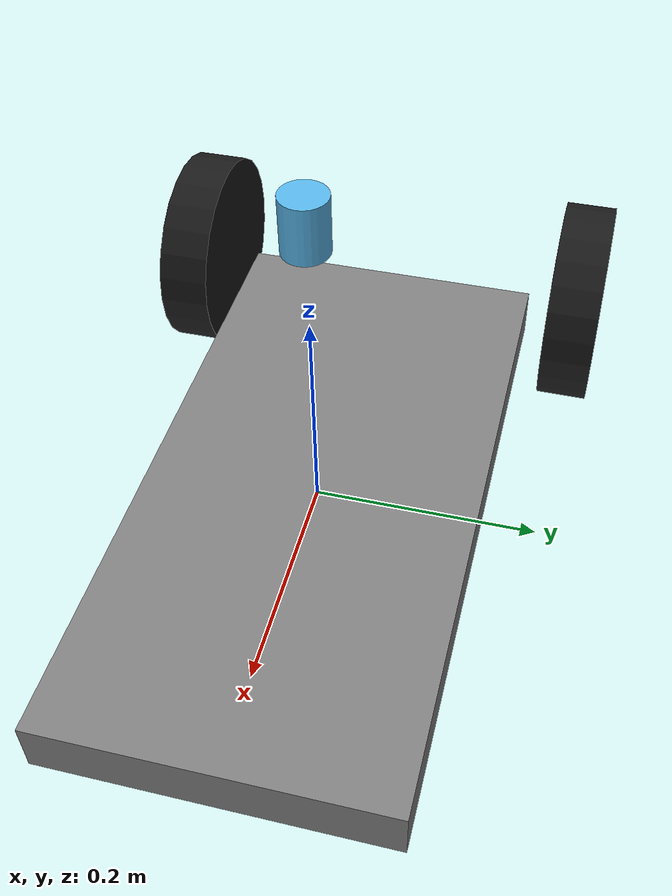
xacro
<?xml version="1.0"?>
<robot name="my_bot">
  <!-- Base link -->
  <link name="base_link">
    <visual>
      <geometry>
        <box size="0.6 0.3 0.05"/>
      </geometry>
      <material name="gray">
        <color rgba="0.5 0.5 0.5 1.0"/>
      </material>
    </visual>
    <collision>
      <geometry>
        <box size="1.0 0.3 0.05"/>
      </geometry>
    </collision>
    <inertial>
      <mass value="5.0"/>
      <inertia ixx="0.1" ixy="0.0" ixz="0.0"
               iyy="0.1" iyz="0.0"
               izz="0.1"/>
    </inertial>
  </link>

  <!-- Link for the laser -->
  <link name="laser_link">
    <inertial>
      <mass value="0.1"/>
      <origin xyz="0 0 0" rpy="0 0 0"/>
      <inertia ixx="0.01" ixy="0" ixz="0" iyy="0.01" iyz="0" izz="0.01"/>
    </inertial>
    <visual>
      <geometry>
        <cylinder length="0.05" radius="0.02"/>
      </geometry>
    </visual>
    <collision>
      <geometry>
        <cylinder length="0.05" radius="0.02"/>
      </geometry>
    </collision>
  </link>

  <!-- Gazebo sensor plugin for laser_link -->
  <gazebo reference="laser_link">
    <sensor type="ray" name="laser">
      <pose>0 0 0.1 0 0 0</pose>
      <visualize>true</visualize>
      <update_rate>10.0</update_rate>
      <ray>
        <scan>
          <horizontal>
            <samples>720</samples>
            <resolution>1</resolution>
            <min_angle>-1.57</min_angle>
            <max_angle>1.57</max_angle>
          </horizontal>
        </scan>
        <range>
          <min>0.1</min>
          <max>10.0</max>
        </range>
        <noise>
          <type>gaussian</type>
          <mean>0.0</mean>
          <stddev>0.01</stddev>
        </noise>
      </ray>
      <plugin name="gazebo_ros_laser_controller" filename="libgazebo_ros_laser.so">
        <topicName>/scan</topicName>
        <frameName>laser_link</frameName>
      </plugin>
    </sensor>
  </gazebo>

  <!-- Joint to attach laser to base_link -->
  <joint name="laser_joint" type="fixed">
    <parent link="base_link"/>
    <child link="laser_link"/>
    <origin xyz="0 0 0.3" rpy="0 0 0"/>
  </joint>

  <!-- Left wheel -->
  <link name="left_wheel">
    <visual>
      <geometry>
        <cylinder length="0.05" radius="0.1"/>
      </geometry>
      <origin rpy="1.5708 0 0" xyz="0 0 0"/>
      <material name="black">
        <color rgba="0.1 0.1 0.1 1"/>
      </material>
    </visual>
    <collision>
      <origin rpy="1.5708 0 0" xyz="0 0 0"/>
      <geometry>
        <cylinder length="0.05" radius="0.1"/>
      </geometry>
    </collision>
    <inertial>
      <mass value="0.5"/>
      <inertia ixx="0.001" ixy="0.0" ixz="0.0"
               iyy="0.001" iyz="0.0"
               izz="0.001"/>
    </inertial>
  </link>

  <!-- Right wheel -->
  <link name="right_wheel">
    <visual>
      <geometry>
        <cylinder length="0.05" radius="0.1"/>
      </geometry>
      <origin rpy="1.5708 0 0" xyz="0 0 0"/>
      <material name="black"/>
    </visual>
    <collision>
      <origin rpy="1.5708 0 0" xyz="0 0 0"/>
      <geometry>
        <cylinder length="0.05" radius="0.1"/>
      </geometry>
    </collision>
    <inertial>
      <mass value="0.5"/>
      <inertia ixx="0.001" ixy="0.0" ixz="0.0"
               iyy="0.001" iyz="0.0"
               izz="0.001"/>
    </inertial>
  </link>

  <!-- Joints: Placing both wheels close to one end of the plank -->
  <joint name="left_wheel_joint" type="continuous">
    <parent link="base_link"/>
    <child link="left_wheel"/>
    <origin xyz="-0.3 0.2 0.025" rpy="0 0 0"/>
    <axis xyz="0 1 0"/>
  </joint>

  <joint name="right_wheel_joint" type="continuous">
    <parent link="base_link"/>
    <child link="right_wheel"/>
    <origin xyz="-0.3 -0.2 0.025" rpy="0 0 0"/>
    <axis xyz="0 1 0"/>
  </joint>

  <!-- Gazebo plugin to simulate differential drive -->
  <gazebo>
  <plugin name="diff_drive_controller" filename="libgazebo_ros_diff_drive.so">
    <ros>
      <namespace>/</namespace>
      <remapping>cmd_vel:=cmd_vel</remapping>
      <remapping>odom:=odom</remapping>
    </ros>
    <leftJoint>left_wheel_joint</leftJoint>
    <rightJoint>right_wheel_joint</rightJoint>
    <wheelSeparation>0.4</wheelSeparation>
    <wheelDiameter>0.2</wheelDiameter>
    <publishWheelTF>true</publishWheelTF>
    <publishOdomTF>true</publishOdomTF>
    <publishWheelJointState>true</publishWheelJointState>
    <robotBaseFrame>base_link</robotBaseFrame>
    <odometryFrame>odom</odometryFrame>
    <odometryTopic>odom</odometryTopic>
    <commandTopic>cmd_vel</commandTopic>
    <updateRate>50.0</updateRate>
  </plugin>
  <plugin name="gazebo_ros_control" filename="libgazebo_ros_control.so"/>
</gazebo>
</robot>
